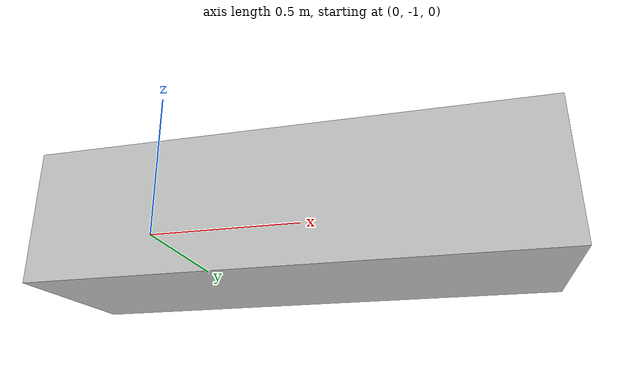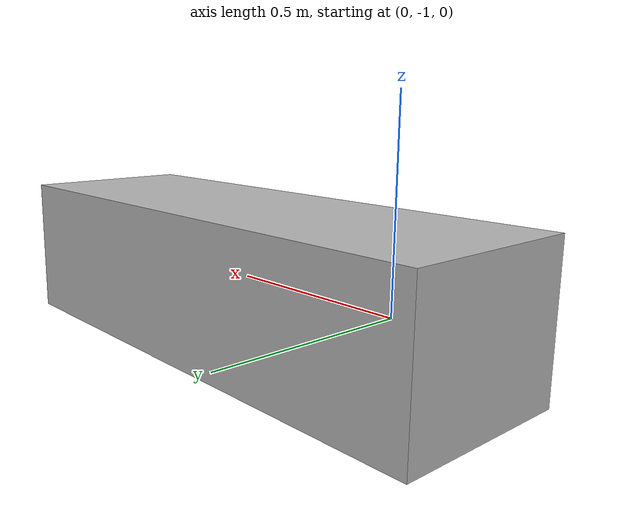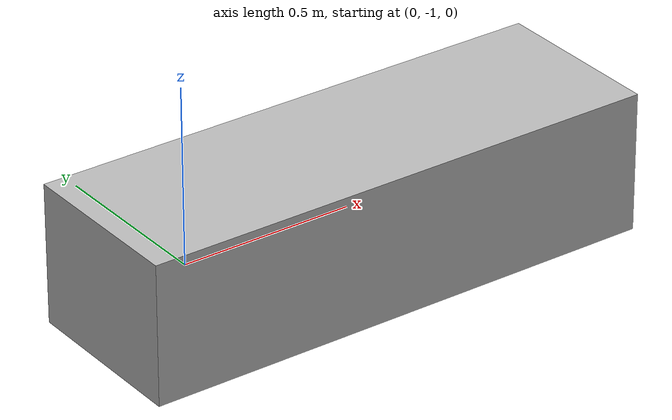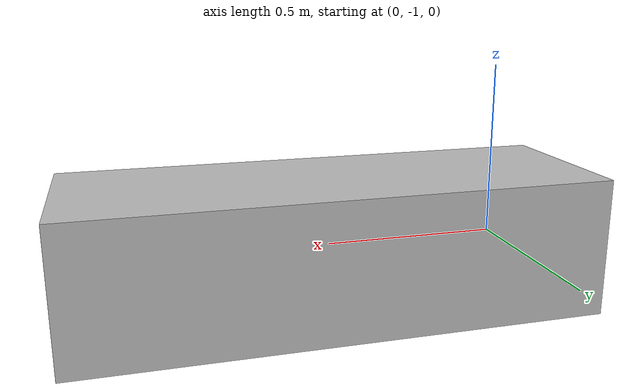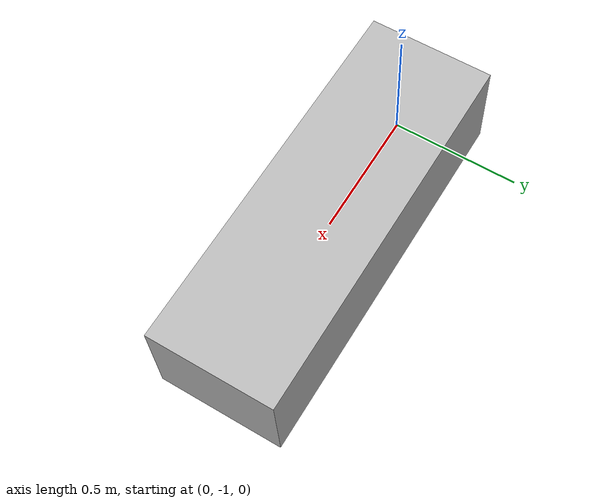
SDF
<?xml version="1.0" ?>
<sdf version="1.5">
  <model name="MPNet_TableRight">
    <pose frame="world">0.5 -1 0.0 0 0 1.5707963</pose>
    <static>true</static>
    <link name="link">
      <inertial>
        <mass>0.1</mass>
      </inertial>
      <visual name="visual">
        <geometry>
          <box>
            <size>0.5 1.5 0.4</size>
          </box>
        </geometry>
      </visual>
    </link>
  </model>
</sdf>
